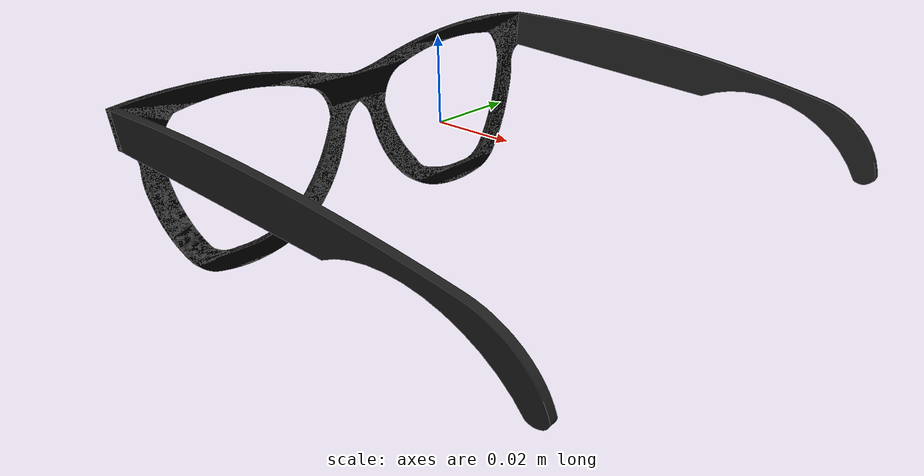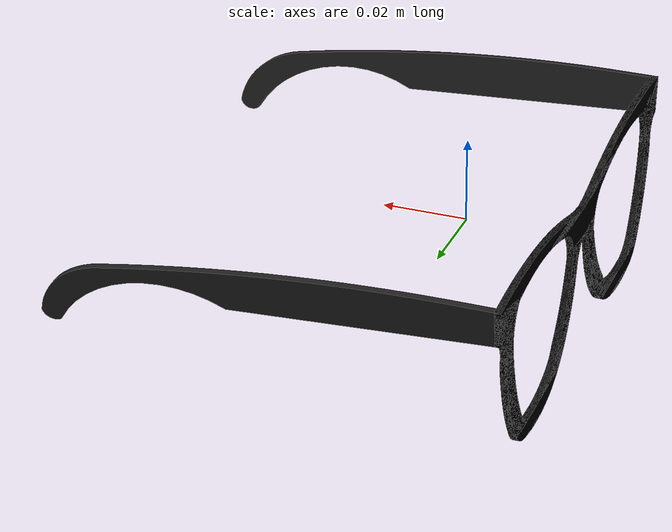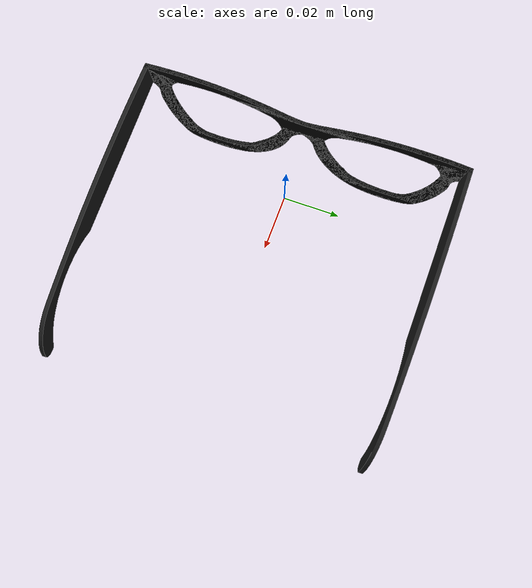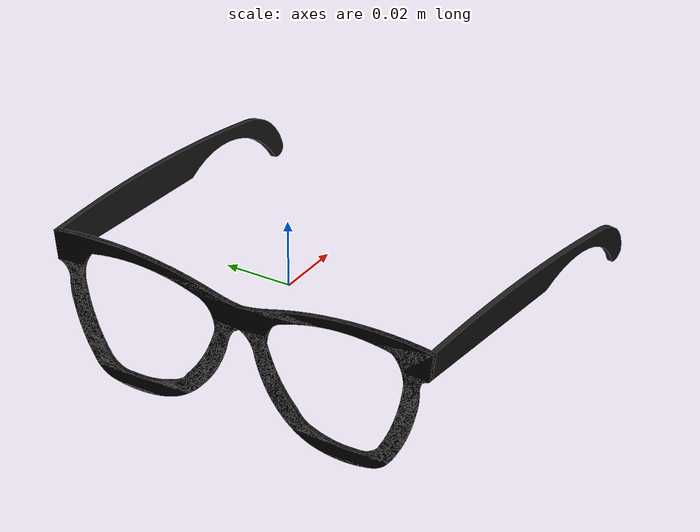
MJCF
<mujoco model="partnet_101293">
  <option iterations="50" timestep="0.001" solver="PGS" gravity="0 0 -9.81" />
  <compiler angle="radian" meshdir="textured_objs_thickness" eulerseq="zyx" autolimits="true" />
  <default>
    <mesh scale="0.1 0.1 0.1" />
    <joint limited="true" damping="0.01" armature="0.01" frictionloss="0.01" />
    <motor ctrllimited="true" />
    <equality solref="0.001 2" />
    <default class="visual">
      <geom condim="1" contype="0" conaffinity="0" group="2" />
    </default>
    <default class="collision">
      <geom condim="4" contype="1" conaffinity="14" friction="0.9 0.2 0.2" solref="0.001 2" group="3" />
    </default>
  </default>
  <asset>
    <material name="original-2_material_0_0" specular="0.06666666666666667" shininess="0.03" rgba="0.11372549019607843 0.11372549019607843 0.11372549019607843 1" />
    <mesh file="original-2/original-2.obj" name="original-2" />
    <material name="original-1_1_material_0_0" specular="0.06666666666666667" shininess="0.03" rgba="0.11372549019607843 0.11372549019607843 0.11372549019607843 1" />
    <material name="original-1_0_material_1_0" specular="0.06666666666666667" shininess="0.03" rgba="0 0 0 1" />
    <mesh file="original-1/original-1_0.obj" name="original-1_0" />
    <mesh file="original-1/original-1_1.obj" name="original-1_1" />
    <material name="original-3_material_0_0" specular="0.06666666666666667" shininess="0.03" rgba="0.11372549019607843 0.11372549019607843 0.11372549019607843 1" />
    <mesh file="original-3/original-3.obj" name="original-3" />
  </asset>
  <worldbody>
    <light directional="true" pos="0 0 0.05" dir="0 0 -1" castshadow="false" />
    <body name="link_2" pos="0.0 0.0 0.0" quat="0.4999999999999998 0.5 -0.5000000000000002 -0.5">
      <geom pos="0.0 0.0 0.0" quat="1 0 0 0" type="mesh" mesh="original-1_0" material="original-1_0_material_1_0" density="0" class="visual" />
      <geom pos="0.0 0.0 0.0" quat="1 0 0 0" type="mesh" mesh="original-1_1" material="original-1_1_material_0_0" density="0" class="visual" />
      <geom pos="0.0 0.0 0.0" quat="1 0 0 0" type="mesh" mesh="original-1_0" material="original-1_0_material_1_0" class="collision" />
      <geom pos="0.0 0.0 0.0" quat="1 0 0 0" type="mesh" mesh="original-1_1" material="original-1_1_material_0_0" class="collision" />
      <body name="link_0" pos="-0.05822870119362571 0.012772445263971878 0.025211727978494827">
        <joint name="joint_0" pos="0 0 0" axis="0 -1 0" range="-0.0 1.3823007675795087" type="hinge" />
        <geom pos="0.05822870119362571 -0.012772445263971878 -0.025211727978494827" quat="1 0 0 0" type="mesh" mesh="original-3" material="original-3_material_0_0" density="0" class="visual" />
        <geom pos="0.05822870119362571 -0.012772445263971878 -0.025211727978494827" quat="1 0 0 0" type="mesh" mesh="original-3" material="original-3_material_0_0" class="collision" />
      </body>
      <body name="link_1" pos="0.06172104681835892 0.012821442256062455 0.025883854335217473">
        <joint name="joint_1" pos="0 0 0" axis="0 1 0" range="0.0 1.2915436464758039" type="hinge" />
        <geom pos="-0.06172104681835892 -0.012821442256062455 -0.025883854335217473" quat="1 0 0 0" type="mesh" mesh="original-2" material="original-2_material_0_0" density="0" class="visual" />
        <geom pos="-0.06172104681835892 -0.012821442256062455 -0.025883854335217473" quat="1 0 0 0" type="mesh" mesh="original-2" material="original-2_material_0_0" class="collision" />
      </body>
    </body>
  </worldbody>
  <actuator>
    <motor name="joint_0" joint="joint_0" ctrllimited="true" ctrlrange="-1 1" gear="1" />
    <motor name="joint_1" joint="joint_1" ctrllimited="true" ctrlrange="-1 1" gear="1" />
  </actuator>
</mujoco>
